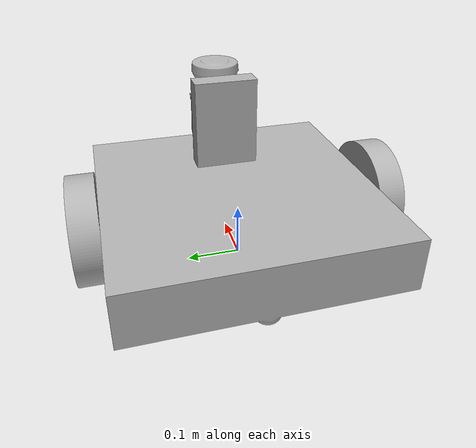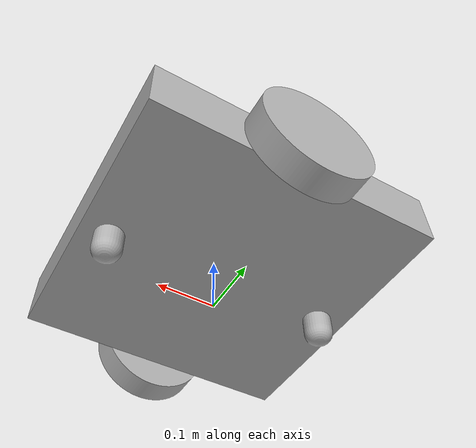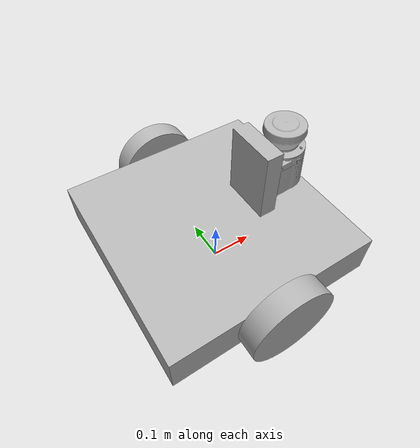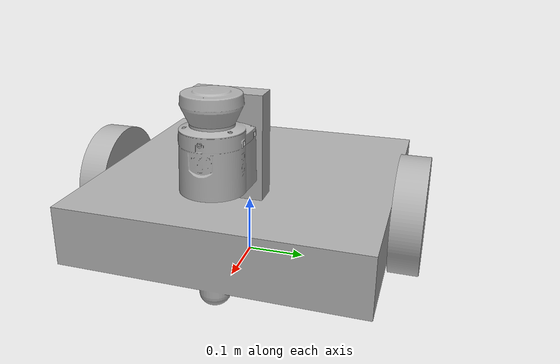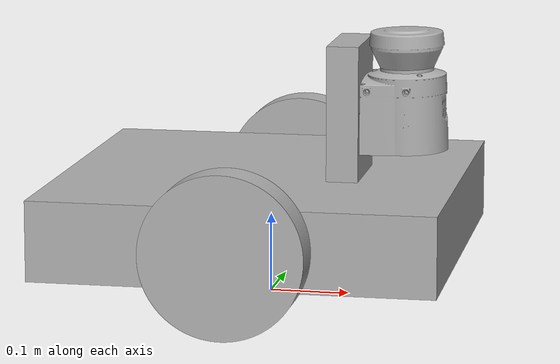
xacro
<?xml version="1.0" ?>
<robot name="sick_robot" xmlns:xacro="http://www.ros.org/wiki/xacro">

<xacro:include filename="$(find sick_robot_description)/urdf/materials.xacro" />
<xacro:include filename="$(find sick_robot_description)/urdf/sick_robot.trans" />
<xacro:include filename="$(find sick_robot_description)/urdf/sick_robot.gazebo" />
<link name="base_link">
  <inertial>
    <origin xyz="-0.0036029775910778254 0.006522716363137433 0.10375272803096819" rpy="0 0 0"/>
    <mass value="204.02307665368892"/>
    <inertia ixx="4.396963" iyy="4.515531" izz="8.31199" ixy="0.004469" iyz="0.005662" ixz="-0.089924"/>
  </inertial>
  <visual>
    <origin xyz="0 0 0" rpy="0 0 0"/>
    <geometry>
      <mesh filename="package://sick_robot_description/meshes/base_link.stl" scale="0.001 0.001 0.001"/>
    </geometry>
    <material name="silver"/>
  </visual>
  <collision>
    <origin xyz="0 0 0" rpy="0 0 0"/>
    <geometry>
      <mesh filename="package://sick_robot_description/meshes/base_link.stl" scale="0.001 0.001 0.001"/>
    </geometry>
  </collision>
</link>

<link name="right_wheel_1">
  <inertial>
    <origin xyz="-1.7872220589749965e-07 -0.024999855410611088 -2.550138446105743e-07" rpy="0 0 0"/>
    <mass value="12.330751165339937"/>
    <inertia ixx="0.033396" iyy="0.061654" izz="0.033396" ixy="0.0" iyz="0.0" ixz="0.0"/>
  </inertial>
  <visual>
    <origin xyz="0.006961 0.243266 -0.1" rpy="0 0 0"/>
    <geometry>
      <mesh filename="package://sick_robot_description/meshes/right_wheel_1.stl" scale="0.001 0.001 0.001"/>
    </geometry>
    <material name="silver"/>
  </visual>
  <collision>
    <origin xyz="0.006961 0.243266 -0.1" rpy="0 0 0"/>
    <geometry>
      <mesh filename="package://sick_robot_description/meshes/right_wheel_1.stl" scale="0.001 0.001 0.001"/>
    </geometry>
  </collision>
</link>

<link name="left_wheel_1">
  <inertial>
    <origin xyz="-1.78722205867142e-07 0.025000144589388706 -2.5501384456894094e-07" rpy="0 0 0"/>
    <mass value="12.330751165339937"/>
    <inertia ixx="0.033396" iyy="0.061654" izz="0.033396" ixy="0.0" iyz="0.0" ixz="0.0"/>
  </inertial>
  <visual>
    <origin xyz="0.006961 -0.256734 -0.1" rpy="0 0 0"/>
    <geometry>
      <mesh filename="package://sick_robot_description/meshes/left_wheel_1.stl" scale="0.001 0.001 0.001"/>
    </geometry>
    <material name="silver"/>
  </visual>
  <collision>
    <origin xyz="0.006961 -0.256734 -0.1" rpy="0 0 0"/>
    <geometry>
      <mesh filename="package://sick_robot_description/meshes/left_wheel_1.stl" scale="0.001 0.001 0.001"/>
    </geometry>
  </collision>
</link>

<link name="lidarbody_1">
  <inertial>
    <origin xyz="0.047535994631253936 0.0001395908648811234 -0.0010604621676543469" rpy="0 0 0"/>
    <mass value="7.150020299255188"/>
    <inertia ixx="0.011055" iyy="0.011285" izz="0.010583" ixy="5e-05" iyz="3.6e-05" ixz="-0.000113"/>
  </inertial>
  <visual>
    <origin xyz="-0.12 0.0 -0.235" rpy="0 0 0"/>
    <geometry>
      <mesh filename="package://sick_robot_description/meshes/lidarbody_1.stl" scale="0.001 0.001 0.001"/>
    </geometry>
    <material name="silver"/>
  </visual>
  <collision>
    <origin xyz="-0.12 0.0 -0.235" rpy="0 0 0"/>
    <geometry>
      <mesh filename="package://sick_robot_description/meshes/lidarbody_1.stl" scale="0.001 0.001 0.001"/>
    </geometry>
  </collision>
</link>

<link name="lidar_1">
  <inertial>
    <origin xyz="-0.0005759955806663719 4.623261478516461e-06 0.025021300385319856" rpy="0 0 0"/>
    <mass value="2.058982552089957"/>
    <inertia ixx="0.001281" iyy="0.001281" izz="0.001902" ixy="-0.0" iyz="0.0" ixz="-1.2e-05"/>
  </inertial>
  <visual>
    <origin xyz="-0.172451 -1.1e-05 -0.288656" rpy="0 0 0"/>
    <geometry>
      <mesh filename="package://sick_robot_description/meshes/lidar_1.stl" scale="0.001 0.001 0.001"/>
    </geometry>
    <material name="silver"/>
  </visual>
  <collision>
    <origin xyz="-0.172451 -1.1e-05 -0.288656" rpy="0 0 0"/>
    <geometry>
      <mesh filename="package://sick_robot_description/meshes/lidar_1.stl" scale="0.001 0.001 0.001"/>
    </geometry>
  </collision>
</link>

<joint name="Rev3" type="continuous">
  <origin xyz="-0.006961 -0.243266 0.1" rpy="0 0 0"/>
  <parent link="base_link"/>
  <child link="right_wheel_1"/>
  <axis xyz="-0.0 -1.0 -0.0"/>
</joint>

<joint name="Rev4" type="continuous">
  <origin xyz="-0.006961 0.256734 0.1" rpy="0 0 0"/>
  <parent link="base_link"/>
  <child link="left_wheel_1"/>
  <axis xyz="0.0 1.0 0.0"/>
</joint>

<joint name="Rig1" type="fixed">
  <origin xyz="0.12 0.0 0.235" rpy="0 0 0"/>
  <parent link="base_link"/>
  <child link="lidarbody_1"/>
</joint>

<joint name="Rig2" type="fixed">
  <origin xyz="0.052451 1.1e-05 0.053656" rpy="0 0 0"/>
  <parent link="lidarbody_1"/>
  <child link="lidar_1"/>
</joint>

</robot>

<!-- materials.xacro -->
<robot name="sick_robot" xmlns:xacro="http://www.ros.org/wiki/xacro" >

<material name="silver">
  <color rgba="0.700 0.700 0.700 1.000"/>
</material>

</robot>

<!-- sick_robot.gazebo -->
<robot name="sick_robot" xmlns:xacro="http://www.ros.org/wiki/xacro" >

<xacro:property name="body_color" value="Gazebo/Silver" />

<gazebo>
  <plugin name="control" filename="libgazebo_ros_control.so"/>
</gazebo>
<gazebo reference="base_link">
  <material>${body_color}</material>
  <mu1>0.1</mu1>
  <mu2>0.1</mu2>
  <selfCollide>true</selfCollide>
  <gravity>true</gravity>
</gazebo>

<gazebo reference="right_wheel_1">
  <material>${body_color}</material>
  <mu1>1200</mu1>
  <mu2>1200</mu2>
  <selfCollide>true</selfCollide>
</gazebo>

<gazebo reference="left_wheel_1">
  <material>${body_color}</material>
  <mu1>1200</mu1>
  <mu2>1200</mu2>
  <selfCollide>true</selfCollide>
</gazebo>

<gazebo reference="lidarbody_1">
  <material>${body_color}</material>
  <mu1>0.2</mu1>
  <mu2>0.2</mu2>
  <selfCollide>true</selfCollide>
</gazebo>

<gazebo reference="lidar_1">
  <material>${body_color}</material>
  <mu1>0.2</mu1>
  <mu2>0.2</mu2>
  <selfCollide>true</selfCollide>
</gazebo>
<gazebo>
  <plugin name="differential_drive_controller" filename="libgazebo_ros_diff_drive.so">

    <!-- Plugin update rate in Hz -->
    <updateRate>100</updateRate>

    <!-- Name of left joint, defaults to `left_joint` -->
    <leftJoint>Rev4</leftJoint>

    <!-- Name of right joint, defaults to `right_joint` -->
    <rightJoint>Rev3</rightJoint>

    <!-- The distance from the center of one wheel to the other, in meters, defaults to 0.34 m -->
    <wheelSeparation>0.5</wheelSeparation>

    <!-- Diameter of the wheels, in meters, defaults to 0.15 m -->
    <wheelDiameter>0.2</wheelDiameter>

    <!-- Wheel acceleration, in rad/s^2, defaults to 0.0 rad/s^2 -->
    <wheelAcceleration>1.0</wheelAcceleration>

    <!-- Maximum torque which the wheels can produce, in Nm, defaults to 5 Nm -->
    <wheelTorque>50</wheelTorque>

    <!-- Topic to receive geometry_msgs/Twist message commands, defaults to `cmd_vel` -->
    <commandTopic>cmd_vel</commandTopic>

    <!-- Topic to publish nav_msgs/Odometry messages, defaults to `odom` -->
    <odometryTopic>odom</odometryTopic>

    <!-- Odometry frame, defaults to `odom` -->
    <odometryFrame>odom</odometryFrame>

    <!-- Robot frame to calculate odometry from, defaults to `base_footprint` -->
    <robotBaseFrame>base_link</robotBaseFrame>

    <!-- Odometry source, 0 for ENCODER, 1 for WORLD, defaults to WORLD -->
    <odometrySource>1</odometrySource>

    <!-- Set to true to publish transforms for the wheel links, defaults to false -->
    <publishWheelTF>false</publishWheelTF>

    <!-- Set to true to publish transforms for the odometry, defaults to true -->
    <publishOdom>true</publishOdom>

    <!-- Set to true to publish sensor_msgs/JointState on /joint_states for the wheel joints, defaults to false -->
    <publishWheelJointState>false</publishWheelJointState>

    <!-- Set to true to swap right and left wheels, defaults to true -->
    <legacyMode>false</legacyMode>
  </plugin>
</gazebo>

  <!-- hokuyo -->
  <gazebo reference="lidar_1">
    <sensor type="ray" name="head_hokuyo_sensor">
      <pose>0 0 0 0 0 0</pose>
      <visualize>true</visualize>
      <update_rate>40</update_rate>
      <ray>
        <scan>
          <horizontal>
            <samples>720</samples>
            <resolution>1</resolution>
            <min_angle>-1.570796</min_angle>
            <max_angle>1.570796</max_angle>
          </horizontal>
        </scan>
        <range>
          <min>0.10</min>
          <max>30.0</max>
          <resolution>0.01</resolution>
        </range>
        <noise>
          <type>gaussian</type>
          <mean>0.0</mean>
          <stddev>0.01</stddev>
        </noise>
      </ray>
      <plugin name="gazebo_ros_head_hokuyo_controller" filename="libgazebo_ros_laser.so">
        <topicName>/scan</topicName>
        <frameName>lidar_1</frameName>
      </plugin>
    </sensor>
  </gazebo>
</robot>
